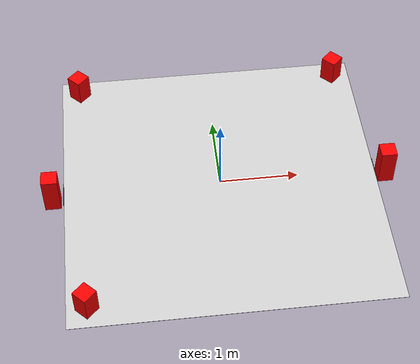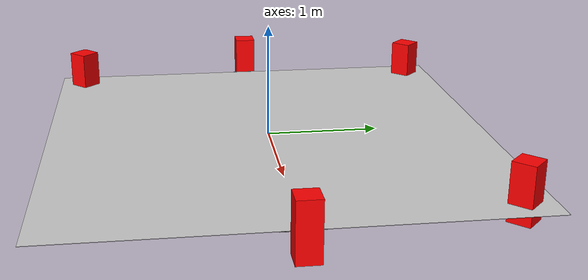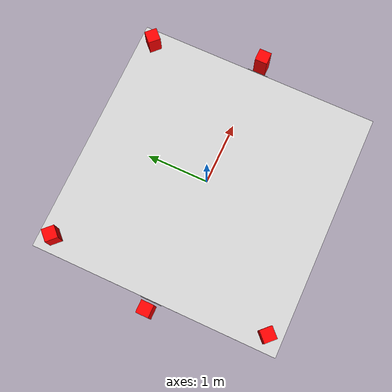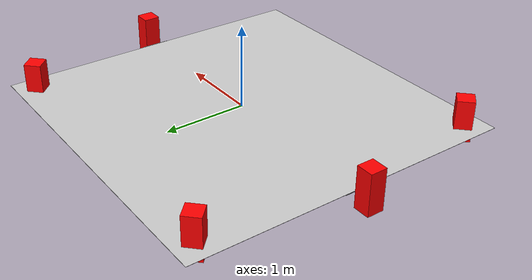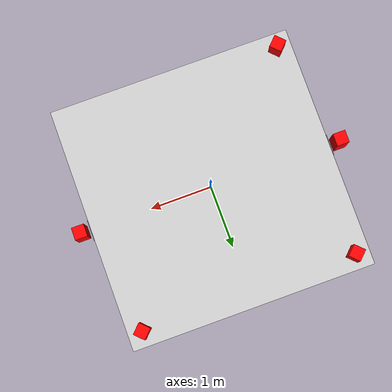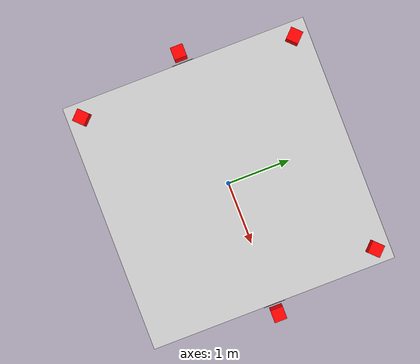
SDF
<sdf version="1.4">
 <world name="default">
  <physics name="1ms" type="ignored">
   <max_step_size>0.001</max_step_size>
   <real_time_factor>1.0</real_time_factor>
  </physics>
  <plugin filename="gz-sim-physics-system" name="gz::sim::systems::Physics"/>
  <plugin filename="gz-sim-user-commands-system" name="gz::sim::systems::UserCommands"/>
  <plugin filename="gz-sim-scene-broadcaster-system" name="gz::sim::systems::SceneBroadcaster"/>
  <plugin filename="gz-sim-sensors-system" name="gz::sim::systems::Sensors">
   <render_engine>ogre2</render_engine>
  </plugin>
  <scene><ambient>0.4 0.4 0.4 1</ambient><background>0.7 0.7 0.7 1</background><shadows>false</shadows></scene>
  <include><uri>model://concrete_floor</uri></include>
  <include><uri>model://line_marker</uri><name>carga_1</name><pose>1.65 0 0 0 0 1.5708</pose></include>
  <include><uri>model://line_marker</uri><name>carga_2</name><pose>1.824 0.175 0 0 0 0</pose></include>
  <include><uri>model://line_marker</uri><name>carga_3</name><pose>1.824 -0.175 0 0 0 0</pose></include>
  <include><uri>model://line_marker</uri><name>carga_4</name><pose>2 0 0 0 0 1.5708</pose></include>
  <include><uri>model://line_marker</uri><name>descarga_1</name><pose>-1.65 0 0 0 0 1.5708</pose></include>
  <include><uri>model://line_marker</uri><name>descarga_2</name><pose>-1.824 0.175 0 0 0 0</pose></include>
  <include><uri>model://line_marker</uri><name>descarga_3</name><pose>-1.824 -0.175 0 0 0 0</pose></include>
  <include><uri>model://line_marker</uri><name>descarga_4</name><pose>-2 0 0 0 0 1.5708</pose></include>
  <model name="carga_box">
   <pose>2.15 0 0.10 0 0 0</pose>
   <static>true</static>
   <link name="link">
    <visual name="visual">
     <geometry><box><size>0.20 0.20 0.50</size></box></geometry>
     <material><ambient>1.0 0.0 0.0 1</ambient><diffuse>1.0 0.0 0.0 1</diffuse></material>
    </visual>
    <collision name="collision"><geometry><box><size>0.2 0.2 0.5</size></box></geometry></collision>
   </link>
  </model>
  <model name="descarga_box">
   <pose>-2.15 0 0.10 0 0 0</pose>
   <static>true</static>
   <link name="link">
    <visual name="visual">
     <geometry><box><size>0.20 0.20 0.50</size></box></geometry>
     <material><ambient>1.0 0.0 0.0 1</ambient><diffuse>1.0 0.0 0.0 1</diffuse></material>
    </visual>
    <collision name="collision"><geometry><box><size>0.2 0.2 0.5</size></box></geometry></collision>
   </link>
  </model>
  <model name="pilar_box_1">
   <pose>1.75 1.75 0.10 0 0 0.7854</pose>
   <static>true</static>
   <link name="link">
    <visual name="visual">
     <geometry><box><size>0.20 0.20 0.50</size></box></geometry>
     <material><ambient>1.0 0.0 0.0 1</ambient><diffuse>1.0 0.0 0.0 1</diffuse></material>
    </visual>
    <collision name="collision"><geometry><box><size>0.2 0.2 0.5</size></box></geometry></collision>
   </link>
  </model>
  <model name="pilar_box_2">
   <pose>-1.75 -1.75 0.10 0 0 0.7854</pose>
   <static>true</static>
   <link name="link">
    <visual name="visual">
     <geometry><box><size>0.20 0.20 0.50</size></box></geometry>
     <material><ambient>1.0 0.0 0.0 1</ambient><diffuse>1.0 0.0 0.0 1</diffuse></material>
    </visual>
    <collision name="collision"><geometry><box><size>0.2 0.2 0.5</size></box></geometry></collision>
   </link>
  </model>
  <model name="pilar_box_3">
   <pose>-1.75 1.75 0.10 0 0 0.7854</pose>
   <static>true</static>
   <link name="link">
    <visual name="visual">
     <geometry><box><size>0.20 0.20 0.50</size></box></geometry>
     <material><ambient>1.0 0.0 0.0 1</ambient><diffuse>1.0 0.0 0.0 1</diffuse></material>
    </visual>
    <collision name="collision"><geometry><box><size>0.2 0.2 0.5</size></box></geometry></collision>
   </link>
  </model>
 </world>
</sdf>

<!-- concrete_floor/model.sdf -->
<sdf version="1.9">
    <model name="concrete_floor">
        <static>true</static>
        <link name="link">
            <collision name="collision">
                <geometry>
                    <plane>
                        <normal>0 0 1</normal>
                        <size>6.0 6.0</size>
                    </plane>
                </geometry>
                <surface>
                    <contact>
                        <collide_bitmask>0xffff</collide_bitmask>
                    </contact>
                    <friction>
                        <ode>
                            <mu>100</mu>
                            <mu2>50</mu2>
                        </ode>
                    </friction>
                </surface>
            </collision>

            <visual name="concrete_visual">
                <pose>0 0 0.001 0 0 0</pose>
                <cast_shadows>false</cast_shadows>
                <geometry>
                    <plane>
                        <normal>0 0 1</normal>
                        <size>4.0 4.0</size>
                    </plane>
                </geometry>

                <material>
                    <ambient>0.8 0.8 0.8 1</ambient>
                    <diffuse>0.8 0.8 0.8 1</diffuse>
                    <specular>1 0.8 0.8 1</specular>
                    <pbr>
                        <metal>
                        <albedo_map>model://concrete_floor/materials/textures/Concrete.png</albedo_map>
                        <normal_map>model://concrete_floor/materials/textures/Concrete.png</normal_map>
                        </metal>
                    </pbr>
                </material>
            </visual>
        </link>
    </model>
</sdf>

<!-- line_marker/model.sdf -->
<sdf version="1.5">
        <model name="line_marker">
  <static>true</static>
  <link name="line_link">
    <visual name="line_visual">
      <geometry>
        <box>
          <size>0.35 0.02 0.001</size> <!-- Largo, ancho, alto -->
        </box>
      </geometry>
      <pose>0 0 0.001 0 0 0</pose> <!-- Ligeramente sobre el suelo para evitar z-fighting -->
      <material>
        <ambient>0 0 0 1</ambient> <!-- Rojo -->
        <diffuse>0 0 0 1</diffuse>
        <specular>0 0 0 1</specular>
      </material>
      <transparency>0.0</transparency>
      <cast_shadows>false</cast_shadows>
    </visual>
  </link>
</model>

    </sdf>
